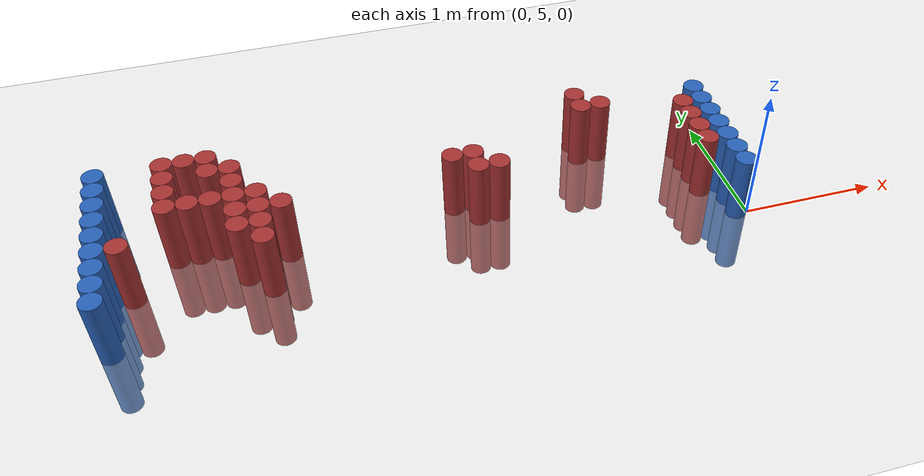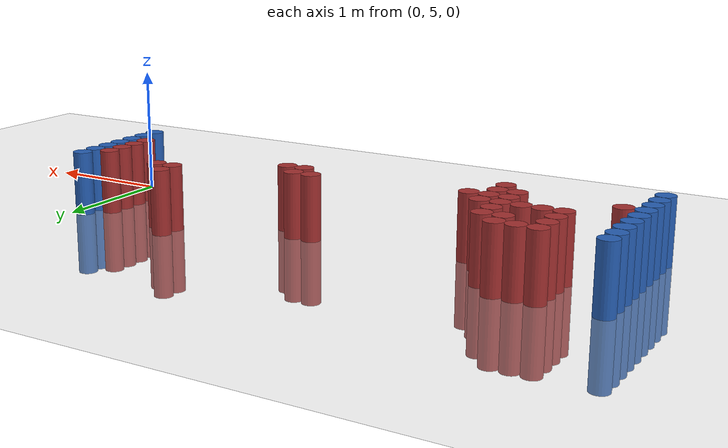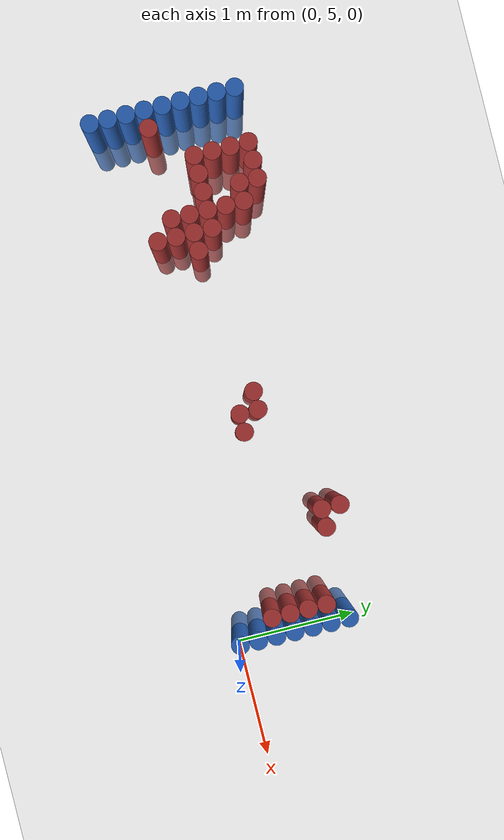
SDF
<sdf version="1.6">
 <world name="world_62">
  <model name="ground_plane">
   <static>1</static>
   <link name="link">
    <collision name="collision">
     <geometry><plane><normal>0 0 1</normal><size>100 100</size></plane></geometry>
     <surface><friction><ode><mu>100</mu><mu2>50</mu2></ode></friction></surface>
    </collision>
    <visual name="visual">
     <cast_shadows>0</cast_shadows>
     <geometry><plane><normal>0 0 1</normal><size>100 100</size></plane></geometry>
     <material>
      <script><uri>file://media/materials/scripts/gazebo.material</uri><name>Gazebo/Grey</name></script>
     </material>
    </visual>
   </link>
  </model>
  <model name="unit_cylinder_93">
   <static>1</static>
   <pose>-4.425000 4.875000 0.000000 0.000000 0.000000 0.000000</pose>
   <link name="link">
    <inertial>
     <mass>1</mass>
     <inertia><ixx>0.145833</ixx><ixy>0</ixy><ixz>0</ixz><iyy>0.145833</iyy><iyz>0</iyz><izz>0.125</izz></inertia>
    </inertial>
    <collision name="collision">
     <geometry><cylinder><radius>0.075000</radius><length>1</length></cylinder></geometry>
    </collision>
    <visual name="visual">
     <geometry><cylinder><radius>0.075000</radius><length>1</length></cylinder></geometry>
     <material>
      <ambient>0.152000 0.379000 0.720000 1</ambient>
      <diffuse>0.152000 0.379000 0.720000 1</diffuse>
     </material>
     <material>
      <script><name>Gazebo/Grey</name><uri>file://media/materials/scripts/gazebo.material</uri></script>
     </material>
    </visual>
   </link>
  </model>
  <model name="unit_cylinder_94">
   <static>1</static>
   <pose>-0.075000 5.025000 0.000000 0.000000 0.000000 0.000000</pose>
   <link name="link">
    <inertial>
     <mass>1</mass>
     <inertia><ixx>0.145833</ixx><ixy>0</ixy><ixz>0</ixz><iyy>0.145833</iyy><iyz>0</iyz><izz>0.125</izz></inertia>
    </inertial>
    <collision name="collision">
     <geometry><cylinder><radius>0.075000</radius><length>1</length></cylinder></geometry>
    </collision>
    <visual name="visual">
     <geometry><cylinder><radius>0.075000</radius><length>1</length></cylinder></geometry>
     <material>
      <ambient>0.152000 0.379000 0.720000 1</ambient>
      <diffuse>0.152000 0.379000 0.720000 1</diffuse>
     </material>
     <material>
      <script><name>Gazebo/Grey</name><uri>file://media/materials/scripts/gazebo.material</uri></script>
     </material>
    </visual>
   </link>
  </model>
  <model name="unit_cylinder_95">
   <static>1</static>
   <pose>-4.425000 5.025000 0.000000 0.000000 0.000000 0.000000</pose>
   <link name="link">
    <inertial>
     <mass>1</mass>
     <inertia><ixx>0.145833</ixx><ixy>0</ixy><ixz>0</ixz><iyy>0.145833</iyy><iyz>0</iyz><izz>0.125</izz></inertia>
    </inertial>
    <collision name="collision">
     <geometry><cylinder><radius>0.075000</radius><length>1</length></cylinder></geometry>
    </collision>
    <visual name="visual">
     <geometry><cylinder><radius>0.075000</radius><length>1</length></cylinder></geometry>
     <material>
      <ambient>0.152000 0.379000 0.720000 1</ambient>
      <diffuse>0.152000 0.379000 0.720000 1</diffuse>
     </material>
     <material>
      <script><name>Gazebo/Grey</name><uri>file://media/materials/scripts/gazebo.material</uri></script>
     </material>
    </visual>
   </link>
  </model>
  <model name="unit_cylinder_96">
   <static>1</static>
   <pose>-4.425000 5.175000 0.000000 0.000000 0.000000 0.000000</pose>
   <link name="link">
    <inertial>
     <mass>1</mass>
     <inertia><ixx>0.145833</ixx><ixy>0</ixy><ixz>0</ixz><iyy>0.145833</iyy><iyz>0</iyz><izz>0.125</izz></inertia>
    </inertial>
    <collision name="collision">
     <geometry><cylinder><radius>0.075000</radius><length>1</length></cylinder></geometry>
    </collision>
    <visual name="visual">
     <geometry><cylinder><radius>0.075000</radius><length>1</length></cylinder></geometry>
     <material>
      <ambient>0.152000 0.379000 0.720000 1</ambient>
      <diffuse>0.152000 0.379000 0.720000 1</diffuse>
     </material>
     <material>
      <script><name>Gazebo/Grey</name><uri>file://media/materials/scripts/gazebo.material</uri></script>
     </material>
    </visual>
   </link>
  </model>
  <model name="unit_cylinder_97">
   <static>1</static>
   <pose>-4.425000 5.325000 0.000000 0.000000 0.000000 0.000000</pose>
   <link name="link">
    <inertial>
     <mass>1</mass>
     <inertia><ixx>0.145833</ixx><ixy>0</ixy><ixz>0</ixz><iyy>0.145833</iyy><iyz>0</iyz><izz>0.125</izz></inertia>
    </inertial>
    <collision name="collision">
     <geometry><cylinder><radius>0.075000</radius><length>1</length></cylinder></geometry>
    </collision>
    <visual name="visual">
     <geometry><cylinder><radius>0.075000</radius><length>1</length></cylinder></geometry>
     <material>
      <ambient>0.152000 0.379000 0.720000 1</ambient>
      <diffuse>0.152000 0.379000 0.720000 1</diffuse>
     </material>
     <material>
      <script><name>Gazebo/Grey</name><uri>file://media/materials/scripts/gazebo.material</uri></script>
     </material>
    </visual>
   </link>
  </model>
  <model name="unit_cylinder_98">
   <static>1</static>
   <pose>-4.425000 5.475000 0.000000 0.000000 0.000000 0.000000</pose>
   <link name="link">
    <inertial>
     <mass>1</mass>
     <inertia><ixx>0.145833</ixx><ixy>0</ixy><ixz>0</ixz><iyy>0.145833</iyy><iyz>0</iyz><izz>0.125</izz></inertia>
    </inertial>
    <collision name="collision">
     <geometry><cylinder><radius>0.075000</radius><length>1</length></cylinder></geometry>
    </collision>
    <visual name="visual">
     <geometry><cylinder><radius>0.075000</radius><length>1</length></cylinder></geometry>
     <material>
      <ambient>0.152000 0.379000 0.720000 1</ambient>
      <diffuse>0.152000 0.379000 0.720000 1</diffuse>
     </material>
     <material>
      <script><name>Gazebo/Grey</name><uri>file://media/materials/scripts/gazebo.material</uri></script>
     </material>
    </visual>
   </link>
  </model>
  <model name="unit_cylinder_99">
   <static>1</static>
   <pose>-4.425000 5.625000 0.000000 0.000000 0.000000 0.000000</pose>
   <link name="link">
    <inertial>
     <mass>1</mass>
     <inertia><ixx>0.145833</ixx><ixy>0</ixy><ixz>0</ixz><iyy>0.145833</iyy><iyz>0</iyz><izz>0.125</izz></inertia>
    </inertial>
    <collision name="collision">
     <geometry><cylinder><radius>0.075000</radius><length>1</length></cylinder></geometry>
    </collision>
    <visual name="visual">
     <geometry><cylinder><radius>0.075000</radius><length>1</length></cylinder></geometry>
     <material>
      <ambient>0.152000 0.379000 0.720000 1</ambient>
      <diffuse>0.152000 0.379000 0.720000 1</diffuse>
     </material>
     <material>
      <script><name>Gazebo/Grey</name><uri>file://media/materials/scripts/gazebo.material</uri></script>
     </material>
    </visual>
   </link>
  </model>
  <model name="unit_cylinder_100">
   <static>1</static>
   <pose>-4.425000 5.775000 0.000000 0.000000 0.000000 0.000000</pose>
   <link name="link">
    <inertial>
     <mass>1</mass>
     <inertia><ixx>0.145833</ixx><ixy>0</ixy><ixz>0</ixz><iyy>0.145833</iyy><iyz>0</iyz><izz>0.125</izz></inertia>
    </inertial>
    <collision name="collision">
     <geometry><cylinder><radius>0.075000</radius><length>1</length></cylinder></geometry>
    </collision>
    <visual name="visual">
     <geometry><cylinder><radius>0.075000</radius><length>1</length></cylinder></geometry>
     <material>
      <ambient>0.152000 0.379000 0.720000 1</ambient>
      <diffuse>0.152000 0.379000 0.720000 1</diffuse>
     </material>
     <material>
      <script><name>Gazebo/Grey</name><uri>file://media/materials/scripts/gazebo.material</uri></script>
     </material>
    </visual>
   </link>
  </model>
  <model name="unit_cylinder_101">
   <static>1</static>
   <pose>-4.425000 5.925000 0.000000 0.000000 0.000000 0.000000</pose>
   <link name="link">
    <inertial>
     <mass>1</mass>
     <inertia><ixx>0.145833</ixx><ixy>0</ixy><ixz>0</ixz><iyy>0.145833</iyy><iyz>0</iyz><izz>0.125</izz></inertia>
    </inertial>
    <collision name="collision">
     <geometry><cylinder><radius>0.075000</radius><length>1</length></cylinder></geometry>
    </collision>
    <visual name="visual">
     <geometry><cylinder><radius>0.075000</radius><length>1</length></cylinder></geometry>
     <material>
      <ambient>0.152000 0.379000 0.720000 1</ambient>
      <diffuse>0.152000 0.379000 0.720000 1</diffuse>
     </material>
     <material>
      <script><name>Gazebo/Grey</name><uri>file://media/materials/scripts/gazebo.material</uri></script>
     </material>
    </visual>
   </link>
  </model>
  <model name="unit_cylinder_102">
   <static>1</static>
   <pose>-4.425000 6.075000 0.000000 0.000000 0.000000 0.000000</pose>
   <link name="link">
    <inertial>
     <mass>1</mass>
     <inertia><ixx>0.145833</ixx><ixy>0</ixy><ixz>0</ixz><iyy>0.145833</iyy><iyz>0</iyz><izz>0.125</izz></inertia>
    </inertial>
    <collision name="collision">
     <geometry><cylinder><radius>0.075000</radius><length>1</length></cylinder></geometry>
    </collision>
    <visual name="visual">
     <geometry><cylinder><radius>0.075000</radius><length>1</length></cylinder></geometry>
     <material>
      <ambient>0.152000 0.379000 0.720000 1</ambient>
      <diffuse>0.152000 0.379000 0.720000 1</diffuse>
     </material>
     <material>
      <script><name>Gazebo/Grey</name><uri>file://media/materials/scripts/gazebo.material</uri></script>
     </material>
    </visual>
   </link>
  </model>
  <model name="unit_cylinder_126">
   <static>1</static>
   <pose>-4.275000 5.325000 0.000000 0.000000 0.000000 0.000000</pose>
   <link name="link">
    <inertial>
     <mass>1</mass>
     <inertia><ixx>0.145833</ixx><ixy>0</ixy><ixz>0</ixz><iyy>0.145833</iyy><iyz>0</iyz><izz>0.125</izz></inertia>
    </inertial>
    <collision name="collision">
     <geometry><cylinder><radius>0.075000</radius><length>1</length></cylinder></geometry>
    </collision>
    <visual name="visual">
     <geometry><cylinder><radius>0.075000</radius><length>1</length></cylinder></geometry>
     <material>
      <ambient>0.648000 0.192000 0.192000 1</ambient>
      <diffuse>0.648000 0.192000 0.192000 1</diffuse>
     </material>
     <material>
      <script><name>Gazebo/Grey</name><uri>file://media/materials/scripts/gazebo.material</uri></script>
     </material>
    </visual>
   </link>
  </model>
  <model name="unit_cylinder_153">
   <static>1</static>
   <pose>-3.975000 5.625000 0.000000 0.000000 0.000000 0.000000</pose>
   <link name="link">
    <inertial>
     <mass>1</mass>
     <inertia><ixx>0.145833</ixx><ixy>0</ixy><ixz>0</ixz><iyy>0.145833</iyy><iyz>0</iyz><izz>0.125</izz></inertia>
    </inertial>
    <collision name="collision">
     <geometry><cylinder><radius>0.075000</radius><length>1</length></cylinder></geometry>
    </collision>
    <visual name="visual">
     <geometry><cylinder><radius>0.075000</radius><length>1</length></cylinder></geometry>
     <material>
      <ambient>0.648000 0.192000 0.192000 1</ambient>
      <diffuse>0.648000 0.192000 0.192000 1</diffuse>
     </material>
     <material>
      <script><name>Gazebo/Grey</name><uri>file://media/materials/scripts/gazebo.material</uri></script>
     </material>
    </visual>
   </link>
  </model>
  <model name="unit_cylinder_154">
   <static>1</static>
   <pose>-3.975000 5.775000 0.000000 0.000000 0.000000 0.000000</pose>
   <link name="link">
    <inertial>
     <mass>1</mass>
     <inertia><ixx>0.145833</ixx><ixy>0</ixy><ixz>0</ixz><iyy>0.145833</iyy><iyz>0</iyz><izz>0.125</izz></inertia>
    </inertial>
    <collision name="collision">
     <geometry><cylinder><radius>0.075000</radius><length>1</length></cylinder></geometry>
    </collision>
    <visual name="visual">
     <geometry><cylinder><radius>0.075000</radius><length>1</length></cylinder></geometry>
     <material>
      <ambient>0.648000 0.192000 0.192000 1</ambient>
      <diffuse>0.648000 0.192000 0.192000 1</diffuse>
     </material>
     <material>
      <script><name>Gazebo/Grey</name><uri>file://media/materials/scripts/gazebo.material</uri></script>
     </material>
    </visual>
   </link>
  </model>
  <model name="unit_cylinder_155">
   <static>1</static>
   <pose>-3.975000 5.925000 0.000000 0.000000 0.000000 0.000000</pose>
   <link name="link">
    <inertial>
     <mass>1</mass>
     <inertia><ixx>0.145833</ixx><ixy>0</ixy><ixz>0</ixz><iyy>0.145833</iyy><iyz>0</iyz><izz>0.125</izz></inertia>
    </inertial>
    <collision name="collision">
     <geometry><cylinder><radius>0.075000</radius><length>1</length></cylinder></geometry>
    </collision>
    <visual name="visual">
     <geometry><cylinder><radius>0.075000</radius><length>1</length></cylinder></geometry>
     <material>
      <ambient>0.648000 0.192000 0.192000 1</ambient>
      <diffuse>0.648000 0.192000 0.192000 1</diffuse>
     </material>
     <material>
      <script><name>Gazebo/Grey</name><uri>file://media/materials/scripts/gazebo.material</uri></script>
     </material>
    </visual>
   </link>
  </model>
  <model name="unit_cylinder_156">
   <static>1</static>
   <pose>-3.975000 6.075000 0.000000 0.000000 0.000000 0.000000</pose>
   <link name="link">
    <inertial>
     <mass>1</mass>
     <inertia><ixx>0.145833</ixx><ixy>0</ixy><ixz>0</ixz><iyy>0.145833</iyy><iyz>0</iyz><izz>0.125</izz></inertia>
    </inertial>
    <collision name="collision">
     <geometry><cylinder><radius>0.075000</radius><length>1</length></cylinder></geometry>
    </collision>
    <visual name="visual">
     <geometry><cylinder><radius>0.075000</radius><length>1</length></cylinder></geometry>
     <material>
      <ambient>0.648000 0.192000 0.192000 1</ambient>
      <diffuse>0.648000 0.192000 0.192000 1</diffuse>
     </material>
     <material>
      <script><name>Gazebo/Grey</name><uri>file://media/materials/scripts/gazebo.material</uri></script>
     </material>
    </visual>
   </link>
  </model>
  <model name="unit_cylinder_158">
   <static>1</static>
   <pose>-3.825000 5.625000 0.000000 0.000000 0.000000 0.000000</pose>
   <link name="link">
    <inertial>
     <mass>1</mass>
     <inertia><ixx>0.145833</ixx><ixy>0</ixy><ixz>0</ixz><iyy>0.145833</iyy><iyz>0</iyz><izz>0.125</izz></inertia>
    </inertial>
    <collision name="collision">
     <geometry><cylinder><radius>0.075000</radius><length>1</length></cylinder></geometry>
    </collision>
    <visual name="visual">
     <geometry><cylinder><radius>0.075000</radius><length>1</length></cylinder></geometry>
     <material>
      <ambient>0.648000 0.192000 0.192000 1</ambient>
      <diffuse>0.648000 0.192000 0.192000 1</diffuse>
     </material>
     <material>
      <script><name>Gazebo/Grey</name><uri>file://media/materials/scripts/gazebo.material</uri></script>
     </material>
    </visual>
   </link>
  </model>
  <model name="unit_cylinder_159">
   <static>1</static>
   <pose>-3.825000 6.075000 0.000000 0.000000 0.000000 0.000000</pose>
   <link name="link">
    <inertial>
     <mass>1</mass>
     <inertia><ixx>0.145833</ixx><ixy>0</ixy><ixz>0</ixz><iyy>0.145833</iyy><iyz>0</iyz><izz>0.125</izz></inertia>
    </inertial>
    <collision name="collision">
     <geometry><cylinder><radius>0.075000</radius><length>1</length></cylinder></geometry>
    </collision>
    <visual name="visual">
     <geometry><cylinder><radius>0.075000</radius><length>1</length></cylinder></geometry>
     <material>
      <ambient>0.648000 0.192000 0.192000 1</ambient>
      <diffuse>0.648000 0.192000 0.192000 1</diffuse>
     </material>
     <material>
      <script><name>Gazebo/Grey</name><uri>file://media/materials/scripts/gazebo.material</uri></script>
     </material>
    </visual>
   </link>
  </model>
  <model name="unit_cylinder_164">
   <static>1</static>
   <pose>-3.675000 5.625000 0.000000 0.000000 0.000000 0.000000</pose>
   <link name="link">
    <inertial>
     <mass>1</mass>
     <inertia><ixx>0.145833</ixx><ixy>0</ixy><ixz>0</ixz><iyy>0.145833</iyy><iyz>0</iyz><izz>0.125</izz></inertia>
    </inertial>
    <collision name="collision">
     <geometry><cylinder><radius>0.075000</radius><length>1</length></cylinder></geometry>
    </collision>
    <visual name="visual">
     <geometry><cylinder><radius>0.075000</radius><length>1</length></cylinder></geometry>
     <material>
      <ambient>0.648000 0.192000 0.192000 1</ambient>
      <diffuse>0.648000 0.192000 0.192000 1</diffuse>
     </material>
     <material>
      <script><name>Gazebo/Grey</name><uri>file://media/materials/scripts/gazebo.material</uri></script>
     </material>
    </visual>
   </link>
  </model>
  <model name="unit_cylinder_165">
   <static>1</static>
   <pose>-3.675000 5.925000 0.000000 0.000000 0.000000 0.000000</pose>
   <link name="link">
    <inertial>
     <mass>1</mass>
     <inertia><ixx>0.145833</ixx><ixy>0</ixy><ixz>0</ixz><iyy>0.145833</iyy><iyz>0</iyz><izz>0.125</izz></inertia>
    </inertial>
    <collision name="collision">
     <geometry><cylinder><radius>0.075000</radius><length>1</length></cylinder></geometry>
    </collision>
    <visual name="visual">
     <geometry><cylinder><radius>0.075000</radius><length>1</length></cylinder></geometry>
     <material>
      <ambient>0.648000 0.192000 0.192000 1</ambient>
      <diffuse>0.648000 0.192000 0.192000 1</diffuse>
     </material>
     <material>
      <script><name>Gazebo/Grey</name><uri>file://media/materials/scripts/gazebo.material</uri></script>
     </material>
    </visual>
   </link>
  </model>
  <model name="unit_cylinder_166">
   <static>1</static>
   <pose>-3.675000 6.075000 0.000000 0.000000 0.000000 0.000000</pose>
   <link name="link">
    <inertial>
     <mass>1</mass>
     <inertia><ixx>0.145833</ixx><ixy>0</ixy><ixz>0</ixz><iyy>0.145833</iyy><iyz>0</iyz><izz>0.125</izz></inertia>
    </inertial>
    <collision name="collision">
     <geometry><cylinder><radius>0.075000</radius><length>1</length></cylinder></geometry>
    </collision>
    <visual name="visual">
     <geometry><cylinder><radius>0.075000</radius><length>1</length></cylinder></geometry>
     <material>
      <ambient>0.648000 0.192000 0.192000 1</ambient>
      <diffuse>0.648000 0.192000 0.192000 1</diffuse>
     </material>
     <material>
      <script><name>Gazebo/Grey</name><uri>file://media/materials/scripts/gazebo.material</uri></script>
     </material>
    </visual>
   </link>
  </model>
  <model name="unit_cylinder_172">
   <static>1</static>
   <pose>-3.525000 5.325000 0.000000 0.000000 0.000000 0.000000</pose>
   <link name="link">
    <inertial>
     <mass>1</mass>
     <inertia><ixx>0.145833</ixx><ixy>0</ixy><ixz>0</ixz><iyy>0.145833</iyy><iyz>0</iyz><izz>0.125</izz></inertia>
    </inertial>
    <collision name="collision">
     <geometry><cylinder><radius>0.075000</radius><length>1</length></cylinder></geometry>
    </collision>
    <visual name="visual">
     <geometry><cylinder><radius>0.075000</radius><length>1</length></cylinder></geometry>
     <material>
      <ambient>0.648000 0.192000 0.192000 1</ambient>
      <diffuse>0.648000 0.192000 0.192000 1</diffuse>
     </material>
     <material>
      <script><name>Gazebo/Grey</name><uri>file://media/materials/scripts/gazebo.material</uri></script>
     </material>
    </visual>
   </link>
  </model>
  <model name="unit_cylinder_173">
   <static>1</static>
   <pose>-3.525000 5.475000 0.000000 0.000000 0.000000 0.000000</pose>
   <link name="link">
    <inertial>
     <mass>1</mass>
     <inertia><ixx>0.145833</ixx><ixy>0</ixy><ixz>0</ixz><iyy>0.145833</iyy><iyz>0</iyz><izz>0.125</izz></inertia>
    </inertial>
    <collision name="collision">
     <geometry><cylinder><radius>0.075000</radius><length>1</length></cylinder></geometry>
    </collision>
    <visual name="visual">
     <geometry><cylinder><radius>0.075000</radius><length>1</length></cylinder></geometry>
     <material>
      <ambient>0.648000 0.192000 0.192000 1</ambient>
      <diffuse>0.648000 0.192000 0.192000 1</diffuse>
     </material>
     <material>
      <script><name>Gazebo/Grey</name><uri>file://media/materials/scripts/gazebo.material</uri></script>
     </material>
    </visual>
   </link>
  </model>
  <model name="unit_cylinder_174">
   <static>1</static>
   <pose>-3.525000 5.625000 0.000000 0.000000 0.000000 0.000000</pose>
   <link name="link">
    <inertial>
     <mass>1</mass>
     <inertia><ixx>0.145833</ixx><ixy>0</ixy><ixz>0</ixz><iyy>0.145833</iyy><iyz>0</iyz><izz>0.125</izz></inertia>
    </inertial>
    <collision name="collision">
     <geometry><cylinder><radius>0.075000</radius><length>1</length></cylinder></geometry>
    </collision>
    <visual name="visual">
     <geometry><cylinder><radius>0.075000</radius><length>1</length></cylinder></geometry>
     <material>
      <ambient>0.648000 0.192000 0.192000 1</ambient>
      <diffuse>0.648000 0.192000 0.192000 1</diffuse>
     </material>
     <material>
      <script><name>Gazebo/Grey</name><uri>file://media/materials/scripts/gazebo.material</uri></script>
     </material>
    </visual>
   </link>
  </model>
  <model name="unit_cylinder_175">
   <static>1</static>
   <pose>-3.525000 5.775000 0.000000 0.000000 0.000000 0.000000</pose>
   <link name="link">
    <inertial>
     <mass>1</mass>
     <inertia><ixx>0.145833</ixx><ixy>0</ixy><ixz>0</ixz><iyy>0.145833</iyy><iyz>0</iyz><izz>0.125</izz></inertia>
    </inertial>
    <collision name="collision">
     <geometry><cylinder><radius>0.075000</radius><length>1</length></cylinder></geometry>
    </collision>
    <visual name="visual">
     <geometry><cylinder><radius>0.075000</radius><length>1</length></cylinder></geometry>
     <material>
      <ambient>0.648000 0.192000 0.192000 1</ambient>
      <diffuse>0.648000 0.192000 0.192000 1</diffuse>
     </material>
     <material>
      <script><name>Gazebo/Grey</name><uri>file://media/materials/scripts/gazebo.material</uri></script>
     </material>
    </visual>
   </link>
  </model>
  <model name="unit_cylinder_176">
   <static>1</static>
   <pose>-3.525000 5.925000 0.000000 0.000000 0.000000 0.000000</pose>
   <link name="link">
    <inertial>
     <mass>1</mass>
     <inertia><ixx>0.145833</ixx><ixy>0</ixy><ixz>0</ixz><iyy>0.145833</iyy><iyz>0</iyz><izz>0.125</izz></inertia>
    </inertial>
    <collision name="collision">
     <geometry><cylinder><radius>0.075000</radius><length>1</length></cylinder></geometry>
    </collision>
    <visual name="visual">
     <geometry><cylinder><radius>0.075000</radius><length>1</length></cylinder></geometry>
     <material>
      <ambient>0.648000 0.192000 0.192000 1</ambient>
      <diffuse>0.648000 0.192000 0.192000 1</diffuse>
     </material>
     <material>
      <script><name>Gazebo/Grey</name><uri>file://media/materials/scripts/gazebo.material</uri></script>
     </material>
    </visual>
   </link>
  </model>
  <model name="unit_cylinder_181">
   <static>1</static>
   <pose>-3.375000 5.175000 0.000000 0.000000 0.000000 0.000000</pose>
   <link name="link">
    <inertial>
     <mass>1</mass>
     <inertia><ixx>0.145833</ixx><ixy>0</ixy><ixz>0</ixz><iyy>0.145833</iyy><iyz>0</iyz><izz>0.125</izz></inertia>
    </inertial>
    <collision name="collision">
     <geometry><cylinder><radius>0.075000</radius><length>1</length></cylinder></geometry>
    </collision>
    <visual name="visual">
     <geometry><cylinder><radius>0.075000</radius><length>1</length></cylinder></geometry>
     <material>
      <ambient>0.648000 0.192000 0.192000 1</ambient>
      <diffuse>0.648000 0.192000 0.192000 1</diffuse>
     </material>
     <material>
      <script><name>Gazebo/Grey</name><uri>file://media/materials/scripts/gazebo.material</uri></script>
     </material>
    </visual>
   </link>
  </model>
  <model name="unit_cylinder_182">
   <static>1</static>
   <pose>-3.375000 5.325000 0.000000 0.000000 0.000000 0.000000</pose>
   <link name="link">
    <inertial>
     <mass>1</mass>
     <inertia><ixx>0.145833</ixx><ixy>0</ixy><ixz>0</ixz><iyy>0.145833</iyy><iyz>0</iyz><izz>0.125</izz></inertia>
    </inertial>
    <collision name="collision">
     <geometry><cylinder><radius>0.075000</radius><length>1</length></cylinder></geometry>
    </collision>
    <visual name="visual">
     <geometry><cylinder><radius>0.075000</radius><length>1</length></cylinder></geometry>
     <material>
      <ambient>0.648000 0.192000 0.192000 1</ambient>
      <diffuse>0.648000 0.192000 0.192000 1</diffuse>
     </material>
     <material>
      <script><name>Gazebo/Grey</name><uri>file://media/materials/scripts/gazebo.material</uri></script>
     </material>
    </visual>
   </link>
  </model>
  <model name="unit_cylinder_183">
   <static>1</static>
   <pose>-3.375000 5.475000 0.000000 0.000000 0.000000 0.000000</pose>
   <link name="link">
    <inertial>
     <mass>1</mass>
     <inertia><ixx>0.145833</ixx><ixy>0</ixy><ixz>0</ixz><iyy>0.145833</iyy><iyz>0</iyz><izz>0.125</izz></inertia>
    </inertial>
    <collision name="collision">
     <geometry><cylinder><radius>0.075000</radius><length>1</length></cylinder></geometry>
    </collision>
    <visual name="visual">
     <geometry><cylinder><radius>0.075000</radius><length>1</length></cylinder></geometry>
     <material>
      <ambient>0.648000 0.192000 0.192000 1</ambient>
      <diffuse>0.648000 0.192000 0.192000 1</diffuse>
     </material>
     <material>
      <script><name>Gazebo/Grey</name><uri>file://media/materials/scripts/gazebo.material</uri></script>
     </material>
    </visual>
   </link>
  </model>
  <model name="unit_cylinder_184">
   <static>1</static>
   <pose>-3.375000 5.625000 0.000000 0.000000 0.000000 0.000000</pose>
   <link name="link">
    <inertial>
     <mass>1</mass>
     <inertia><ixx>0.145833</ixx><ixy>0</ixy><ixz>0</ixz><iyy>0.145833</iyy><iyz>0</iyz><izz>0.125</izz></inertia>
    </inertial>
    <collision name="collision">
     <geometry><cylinder><radius>0.075000</radius><length>1</length></cylinder></geometry>
    </collision>
    <visual name="visual">
     <geometry><cylinder><radius>0.075000</radius><length>1</length></cylinder></geometry>
     <material>
      <ambient>0.648000 0.192000 0.192000 1</ambient>
      <diffuse>0.648000 0.192000 0.192000 1</diffuse>
     </material>
     <material>
      <script><name>Gazebo/Grey</name><uri>file://media/materials/scripts/gazebo.material</uri></script>
     </material>
    </visual>
   </link>
  </model>
  <model name="unit_cylinder_189">
   <static>1</static>
   <pose>-3.225000 5.475000 0.000000 0.000000 0.000000 0.000000</pose>
   <link name="link">
    <inertial>
     <mass>1</mass>
     <inertia><ixx>0.145833</ixx><ixy>0</ixy><ixz>0</ixz><iyy>0.145833</iyy><iyz>0</iyz><izz>0.125</izz></inertia>
    </inertial>
    <collision name="collision">
     <geometry><cylinder><radius>0.075000</radius><length>1</length></cylinder></geometry>
    </collision>
    <visual name="visual">
     <geometry><cylinder><radius>0.075000</radius><length>1</length></cylinder></geometry>
     <material>
      <ambient>0.648000 0.192000 0.192000 1</ambient>
      <diffuse>0.648000 0.192000 0.192000 1</diffuse>
     </material>
     <material>
      <script><name>Gazebo/Grey</name><uri>file://media/materials/scripts/gazebo.material</uri></script>
     </material>
    </visual>
   </link>
  </model>
  <model name="unit_cylinder_210">
   <static>1</static>
   <pose>-2.025000 5.625000 0.000000 0.000000 0.000000 0.000000</pose>
   <link name="link">
    <inertial>
     <mass>1</mass>
     <inertia><ixx>0.145833</ixx><ixy>0</ixy><ixz>0</ixz><iyy>0.145833</iyy><iyz>0</iyz><izz>0.125</izz></inertia>
    </inertial>
    <collision name="collision">
     <geometry><cylinder><radius>0.075000</radius><length>1</length></cylinder></geometry>
    </collision>
    <visual name="visual">
     <geometry><cylinder><radius>0.075000</radius><length>1</length></cylinder></geometry>
     <material>
      <ambient>0.648000 0.192000 0.192000 1</ambient>
      <diffuse>0.648000 0.192000 0.192000 1</diffuse>
     </material>
     <material>
      <script><name>Gazebo/Grey</name><uri>file://media/materials/scripts/gazebo.material</uri></script>
     </material>
    </visual>
   </link>
  </model>
  <model name="unit_cylinder_212">
   <static>1</static>
   <pose>-1.875000 5.475000 0.000000 0.000000 0.000000 0.000000</pose>
   <link name="link">
    <inertial>
     <mass>1</mass>
     <inertia><ixx>0.145833</ixx><ixy>0</ixy><ixz>0</ixz><iyy>0.145833</iyy><iyz>0</iyz><izz>0.125</izz></inertia>
    </inertial>
    <collision name="collision">
     <geometry><cylinder><radius>0.075000</radius><length>1</length></cylinder></geometry>
    </collision>
    <visual name="visual">
     <geometry><cylinder><radius>0.075000</radius><length>1</length></cylinder></geometry>
     <material>
      <ambient>0.648000 0.192000 0.192000 1</ambient>
      <diffuse>0.648000 0.192000 0.192000 1</diffuse>
     </material>
     <material>
      <script><name>Gazebo/Grey</name><uri>file://media/materials/scripts/gazebo.material</uri></script>
     </material>
    </visual>
   </link>
  </model>
  <model name="unit_cylinder_213">
   <static>1</static>
   <pose>-1.875000 5.625000 0.000000 0.000000 0.000000 0.000000</pose>
   <link name="link">
    <inertial>
     <mass>1</mass>
     <inertia><ixx>0.145833</ixx><ixy>0</ixy><ixz>0</ixz><iyy>0.145833</iyy><iyz>0</iyz><izz>0.125</izz></inertia>
    </inertial>
    <collision name="collision">
     <geometry><cylinder><radius>0.075000</radius><length>1</length></cylinder></geometry>
    </collision>
    <visual name="visual">
     <geometry><cylinder><radius>0.075000</radius><length>1</length></cylinder></geometry>
     <material>
      <ambient>0.648000 0.192000 0.192000 1</ambient>
      <diffuse>0.648000 0.192000 0.192000 1</diffuse>
     </material>
     <material>
      <script><name>Gazebo/Grey</name><uri>file://media/materials/scripts/gazebo.material</uri></script>
     </material>
    </visual>
   </link>
  </model>
  <model name="unit_cylinder_217">
   <static>1</static>
   <pose>-1.725000 5.475000 0.000000 0.000000 0.000000 0.000000</pose>
   <link name="link">
    <inertial>
     <mass>1</mass>
     <inertia><ixx>0.145833</ixx><ixy>0</ixy><ixz>0</ixz><iyy>0.145833</iyy><iyz>0</iyz><izz>0.125</izz></inertia>
    </inertial>
    <collision name="collision">
     <geometry><cylinder><radius>0.075000</radius><length>1</length></cylinder></geometry>
    </collision>
    <visual name="visual">
     <geometry><cylinder><radius>0.075000</radius><length>1</length></cylinder></geometry>
     <material>
      <ambient>0.648000 0.192000 0.192000 1</ambient>
      <diffuse>0.648000 0.192000 0.192000 1</diffuse>
     </material>
     <material>
      <script><name>Gazebo/Grey</name><uri>file://media/materials/scripts/gazebo.material</uri></script>
     </material>
    </visual>
   </link>
  </model>
  <model name="unit_cylinder_223">
   <static>1</static>
   <pose>-0.975000 5.925000 0.000000 0.000000 0.000000 0.000000</pose>
   <link name="link">
    <inertial>
     <mass>1</mass>
     <inertia><ixx>0.145833</ixx><ixy>0</ixy><ixz>0</ixz><iyy>0.145833</iyy><iyz>0</iyz><izz>0.125</izz></inertia>
    </inertial>
    <collision name="collision">
     <geometry><cylinder><radius>0.075000</radius><length>1</length></cylinder></geometry>
    </collision>
    <visual name="visual">
     <geometry><cylinder><radius>0.075000</radius><length>1</length></cylinder></geometry>
     <material>
      <ambient>0.648000 0.192000 0.192000 1</ambient>
      <diffuse>0.648000 0.192000 0.192000 1</diffuse>
     </material>
     <material>
      <script><name>Gazebo/Grey</name><uri>file://media/materials/scripts/gazebo.material</uri></script>
     </material>
    </visual>
   </link>
  </model>
  <model name="unit_cylinder_224">
   <static>1</static>
   <pose>-0.975000 6.075000 0.000000 0.000000 0.000000 0.000000</pose>
   <link name="link">
    <inertial>
     <mass>1</mass>
     <inertia><ixx>0.145833</ixx><ixy>0</ixy><ixz>0</ixz><iyy>0.145833</iyy><iyz>0</iyz><izz>0.125</izz></inertia>
    </inertial>
    <collision name="collision">
     <geometry><cylinder><radius>0.075000</radius><length>1</length></cylinder></geometry>
    </collision>
    <visual name="visual">
     <geometry><cylinder><radius>0.075000</radius><length>1</length></cylinder></geometry>
     <material>
      <ambient>0.648000 0.192000 0.192000 1</ambient>
      <diffuse>0.648000 0.192000 0.192000 1</diffuse>
     </material>
     <material>
      <script><name>Gazebo/Grey</name><uri>file://media/materials/scripts/gazebo.material</uri></script>
     </material>
    </visual>
   </link>
  </model>
  <model name="unit_cylinder_229">
   <static>1</static>
   <pose>-0.825000 5.925000 0.000000 0.000000 0.000000 0.000000</pose>
   <link name="link">
    <inertial>
     <mass>1</mass>
     <inertia><ixx>0.145833</ixx><ixy>0</ixy><ixz>0</ixz><iyy>0.145833</iyy><iyz>0</iyz><izz>0.125</izz></inertia>
    </inertial>
    <collision name="collision">
     <geometry><cylinder><radius>0.075000</radius><length>1</length></cylinder></geometry>
    </collision>
    <visual name="visual">
     <geometry><cylinder><radius>0.075000</radius><length>1</length></cylinder></geometry>
     <material>
      <ambient>0.648000 0.192000 0.192000 1</ambient>
      <diffuse>0.648000 0.192000 0.192000 1</diffuse>
     </material>
     <material>
      <script><name>Gazebo/Grey</name><uri>file://media/materials/scripts/gazebo.material</uri></script>
     </material>
    </visual>
   </link>
  </model>
  <model name="unit_cylinder_236">
   <static>1</static>
   <pose>-0.225000 5.325000 0.000000 0.000000 0.000000 0.000000</pose>
   <link name="link">
    <inertial>
     <mass>1</mass>
     <inertia><ixx>0.145833</ixx><ixy>0</ixy><ixz>0</ixz><iyy>0.145833</iyy><iyz>0</iyz><izz>0.125</izz></inertia>
    </inertial>
    <collision name="collision">
     <geometry><cylinder><radius>0.075000</radius><length>1</length></cylinder></geometry>
    </collision>
    <visual name="visual">
     <geometry><cylinder><radius>0.075000</radius><length>1</length></cylinder></geometry>
     <material>
      <ambient>0.648000 0.192000 0.192000 1</ambient>
      <diffuse>0.648000 0.192000 0.192000 1</diffuse>
     </material>
     <material>
      <script><name>Gazebo/Grey</name><uri>file://media/materials/scripts/gazebo.material</uri></script>
     </material>
    </visual>
   </link>
  </model>
  <model name="unit_cylinder_237">
   <static>1</static>
   <pose>-0.225000 5.475000 0.000000 0.000000 0.000000 0.000000</pose>
   <link name="link">
    <inertial>
     <mass>1</mass>
     <inertia><ixx>0.145833</ixx><ixy>0</ixy><ixz>0</ixz><iyy>0.145833</iyy><iyz>0</iyz><izz>0.125</izz></inertia>
    </inertial>
    <collision name="collision">
     <geometry><cylinder><radius>0.075000</radius><length>1</length></cylinder></geometry>
    </collision>
    <visual name="visual">
     <geometry><cylinder><radius>0.075000</radius><length>1</length></cylinder></geometry>
     <material>
      <ambient>0.648000 0.192000 0.192000 1</ambient>
      <diffuse>0.648000 0.192000 0.192000 1</diffuse>
     </material>
     <material>
      <script><name>Gazebo/Grey</name><uri>file://media/materials/scripts/gazebo.material</uri></script>
     </material>
    </visual>
   </link>
  </model>
  <model name="unit_cylinder_238">
   <static>1</static>
   <pose>-0.225000 5.625000 0.000000 0.000000 0.000000 0.000000</pose>
   <link name="link">
    <inertial>
     <mass>1</mass>
     <inertia><ixx>0.145833</ixx><ixy>0</ixy><ixz>0</ixz><iyy>0.145833</iyy><iyz>0</iyz><izz>0.125</izz></inertia>
    </inertial>
    <collision name="collision">
     <geometry><cylinder><radius>0.075000</radius><length>1</length></cylinder></geometry>
    </collision>
    <visual name="visual">
     <geometry><cylinder><radius>0.075000</radius><length>1</length></cylinder></geometry>
     <material>
      <ambient>0.648000 0.192000 0.192000 1</ambient>
      <diffuse>0.648000 0.192000 0.192000 1</diffuse>
     </material>
     <material>
      <script><name>Gazebo/Grey</name><uri>file://media/materials/scripts/gazebo.material</uri></script>
     </material>
    </visual>
   </link>
  </model>
  <model name="unit_cylinder_239">
   <static>1</static>
   <pose>-0.225000 5.775000 0.000000 0.000000 0.000000 0.000000</pose>
   <link name="link">
    <inertial>
     <mass>1</mass>
     <inertia><ixx>0.145833</ixx><ixy>0</ixy><ixz>0</ixz><iyy>0.145833</iyy><iyz>0</iyz><izz>0.125</izz></inertia>
    </inertial>
    <collision name="collision">
     <geometry><cylinder><radius>0.075000</radius><length>1</length></cylinder></geometry>
    </collision>
    <visual name="visual">
     <geometry><cylinder><radius>0.075000</radius><length>1</length></cylinder></geometry>
     <material>
      <ambient>0.648000 0.192000 0.192000 1</ambient>
      <diffuse>0.648000 0.192000 0.192000 1</diffuse>
     </material>
     <material>
      <script><name>Gazebo/Grey</name><uri>file://media/materials/scripts/gazebo.material</uri></script>
     </material>
    </visual>
   </link>
  </model>
  <model name="unit_cylinder_249">
   <static>1</static>
   <pose>-0.075000 5.175000 0.000000 0.000000 0.000000 0.000000</pose>
   <link name="link">
    <inertial>
     <mass>1</mass>
     <inertia><ixx>0.145833</ixx><ixy>0</ixy><ixz>0</ixz><iyy>0.145833</iyy><iyz>0</iyz><izz>0.125</izz></inertia>
    </inertial>
    <collision name="collision">
     <geometry><cylinder><radius>0.075000</radius><length>1</length></cylinder></geometry>
    </collision>
    <visual name="visual">
     <geometry><cylinder><radius>0.075000</radius><length>1</length></cylinder></geometry>
     <material>
      <ambient>0.152000 0.379000 0.720000 1</ambient>
      <diffuse>0.152000 0.379000 0.720000 1</diffuse>
     </material>
     <material>
      <script><name>Gazebo/Grey</name><uri>file://media/materials/scripts/gazebo.material</uri></script>
     </material>
    </visual>
   </link>
  </model>
  <model name="unit_cylinder_250">
   <static>1</static>
   <pose>-0.075000 5.325000 0.000000 0.000000 0.000000 0.000000</pose>
   <link name="link">
    <inertial>
     <mass>1</mass>
     <inertia><ixx>0.145833</ixx><ixy>0</ixy><ixz>0</ixz><iyy>0.145833</iyy><iyz>0</iyz><izz>0.125</izz></inertia>
    </inertial>
    <collision name="collision">
     <geometry><cylinder><radius>0.075000</radius><length>1</length></cylinder></geometry>
    </collision>
    <visual name="visual">
     <geometry><cylinder><radius>0.075000</radius><length>1</length></cylinder></geometry>
     <material>
      <ambient>0.152000 0.379000 0.720000 1</ambient>
      <diffuse>0.152000 0.379000 0.720000 1</diffuse>
     </material>
     <material>
      <script><name>Gazebo/Grey</name><uri>file://media/materials/scripts/gazebo.material</uri></script>
     </material>
    </visual>
   </link>
  </model>
  <model name="unit_cylinder_251">
   <static>1</static>
   <pose>-0.075000 5.475000 0.000000 0.000000 0.000000 0.000000</pose>
   <link name="link">
    <inertial>
     <mass>1</mass>
     <inertia><ixx>0.145833</ixx><ixy>0</ixy><ixz>0</ixz><iyy>0.145833</iyy><iyz>0</iyz><izz>0.125</izz></inertia>
    </inertial>
    <collision name="collision">
     <geometry><cylinder><radius>0.075000</radius><length>1</length></cylinder></geometry>
    </collision>
    <visual name="visual">
     <geometry><cylinder><radius>0.075000</radius><length>1</length></cylinder></geometry>
     <material>
      <ambient>0.152000 0.379000 0.720000 1</ambient>
      <diffuse>0.152000 0.379000 0.720000 1</diffuse>
     </material>
     <material>
      <script><name>Gazebo/Grey</name><uri>file://media/materials/scripts/gazebo.material</uri></script>
     </material>
    </visual>
   </link>
  </model>
  <model name="unit_cylinder_252">
   <static>1</static>
   <pose>-0.075000 5.625000 0.000000 0.000000 0.000000 0.000000</pose>
   <link name="link">
    <inertial>
     <mass>1</mass>
     <inertia><ixx>0.145833</ixx><ixy>0</ixy><ixz>0</ixz><iyy>0.145833</iyy><iyz>0</iyz><izz>0.125</izz></inertia>
    </inertial>
    <collision name="collision">
     <geometry><cylinder><radius>0.075000</radius><length>1</length></cylinder></geometry>
    </collision>
    <visual name="visual">
     <geometry><cylinder><radius>0.075000</radius><length>1</length></cylinder></geometry>
     <material>
      <ambient>0.152000 0.379000 0.720000 1</ambient>
      <diffuse>0.152000 0.379000 0.720000 1</diffuse>
     </material>
     <material>
      <script><name>Gazebo/Grey</name><uri>file://media/materials/scripts/gazebo.material</uri></script>
     </material>
    </visual>
   </link>
  </model>
  <model name="unit_cylinder_253">
   <static>1</static>
   <pose>-0.075000 5.775000 0.000000 0.000000 0.000000 0.000000</pose>
   <link name="link">
    <inertial>
     <mass>1</mass>
     <inertia><ixx>0.145833</ixx><ixy>0</ixy><ixz>0</ixz><iyy>0.145833</iyy><iyz>0</iyz><izz>0.125</izz></inertia>
    </inertial>
    <collision name="collision">
     <geometry><cylinder><radius>0.075000</radius><length>1</length></cylinder></geometry>
    </collision>
    <visual name="visual">
     <geometry><cylinder><radius>0.075000</radius><length>1</length></cylinder></geometry>
     <material>
      <ambient>0.152000 0.379000 0.720000 1</ambient>
      <diffuse>0.152000 0.379000 0.720000 1</diffuse>
     </material>
     <material>
      <script><name>Gazebo/Grey</name><uri>file://media/materials/scripts/gazebo.material</uri></script>
     </material>
    </visual>
   </link>
  </model>
  <model name="unit_cylinder_254">
   <static>1</static>
   <pose>-0.075000 5.925000 0.000000 0.000000 0.000000 0.000000</pose>
   <link name="link">
    <inertial>
     <mass>1</mass>
     <inertia><ixx>0.145833</ixx><ixy>0</ixy><ixz>0</ixz><iyy>0.145833</iyy><iyz>0</iyz><izz>0.125</izz></inertia>
    </inertial>
    <collision name="collision">
     <geometry><cylinder><radius>0.075000</radius><length>1</length></cylinder></geometry>
    </collision>
    <visual name="visual">
     <geometry><cylinder><radius>0.075000</radius><length>1</length></cylinder></geometry>
     <material>
      <ambient>0.152000 0.379000 0.720000 1</ambient>
      <diffuse>0.152000 0.379000 0.720000 1</diffuse>
     </material>
     <material>
      <script><name>Gazebo/Grey</name><uri>file://media/materials/scripts/gazebo.material</uri></script>
     </material>
    </visual>
   </link>
  </model>
 </world>
</sdf>
